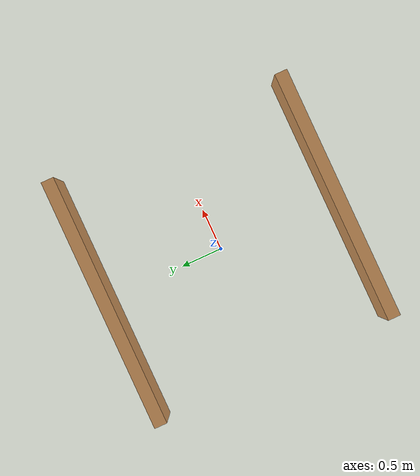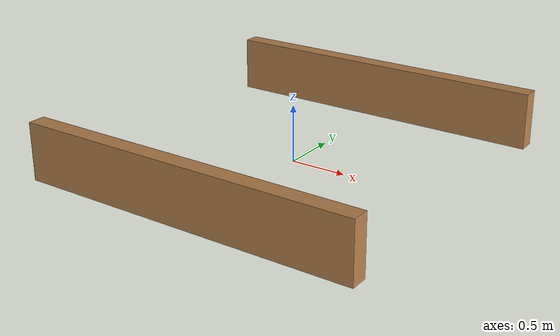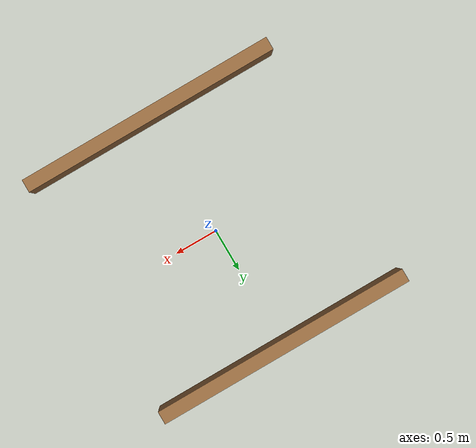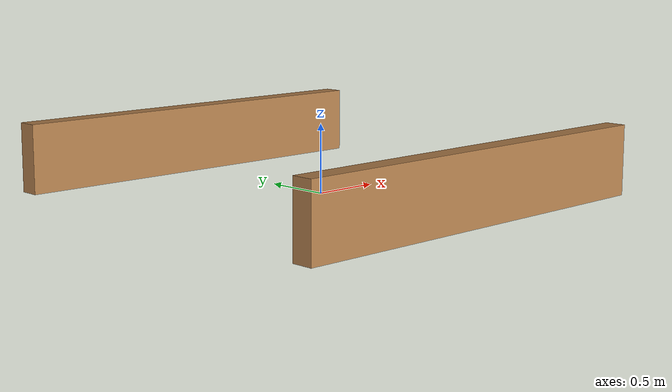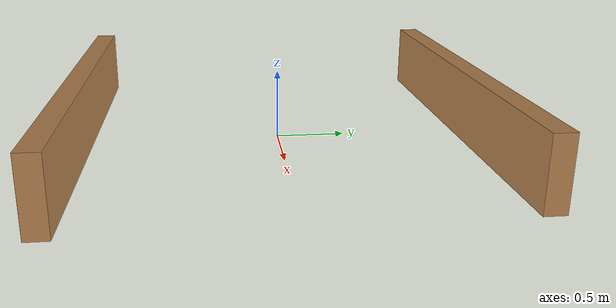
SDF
<?xml version='1.0'?>
<sdf version='1.6'>
  <model name='hallway_3'>
    <pose frame=''>0 0 0 0 -0 0</pose>
    <link name='Wall_0'>
      <collision name='Wall_0_Collision'>
        <geometry>
          <box>
            <size>3 0.15 0.5</size>
          </box>
        </geometry>
        <pose frame=''>0 0 0.25 0 -0 0</pose>
      </collision>
      <visual name='Wall_0_Visual'>
        <pose frame=''>0 0 0.25 0 -0 0</pose>
        <geometry>
          <box>
            <size>3 0.15 0.5</size>
          </box>
        </geometry>
        <material>
          <script>
            <uri>file://media/materials/scripts/gazebo.material</uri>
            <name>Gazebo/Wood</name>
          </script>
          <ambient>1 1 1 1</ambient>
        </material>
      </visual>
      <pose frame=''>0 1.425 0 0 -0 0</pose>
    </link>
    <link name='Wall_1'>
      <collision name='Wall_1_Collision'>
        <geometry>
          <box>
            <size>3 0.15 0.5</size>
          </box>
        </geometry>
        <pose frame=''>0 0 0.25 0 -0 0</pose>
      </collision>
      <visual name='Wall_1_Visual'>
        <pose frame=''>0 0 0.25 0 -0 0</pose>
        <geometry>
          <box>
            <size>3 0.15 0.5</size>
          </box>
        </geometry>
        <material>
          <script>
            <uri>file://media/materials/scripts/gazebo.material</uri>
            <name>Gazebo/Wood</name>
          </script>
          <ambient>1 1 1 1</ambient>
        </material>
      </visual>
      <pose frame=''>0 -1.425 0 0 -0 0</pose>
    </link>

    <static>1</static>
  </model>
</sdf>
